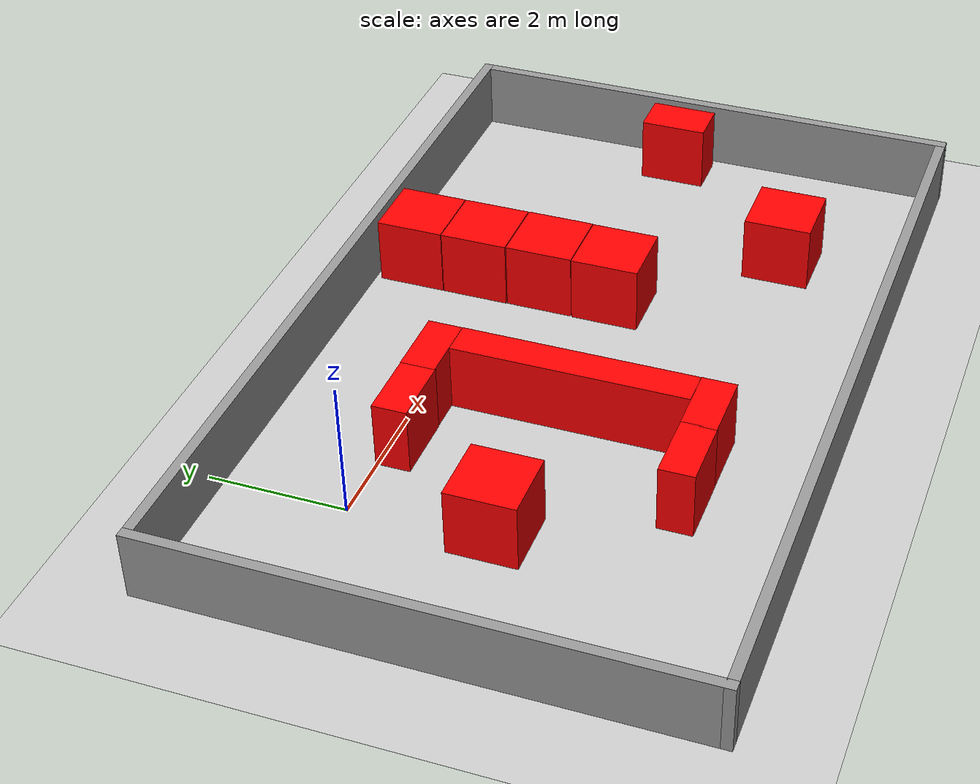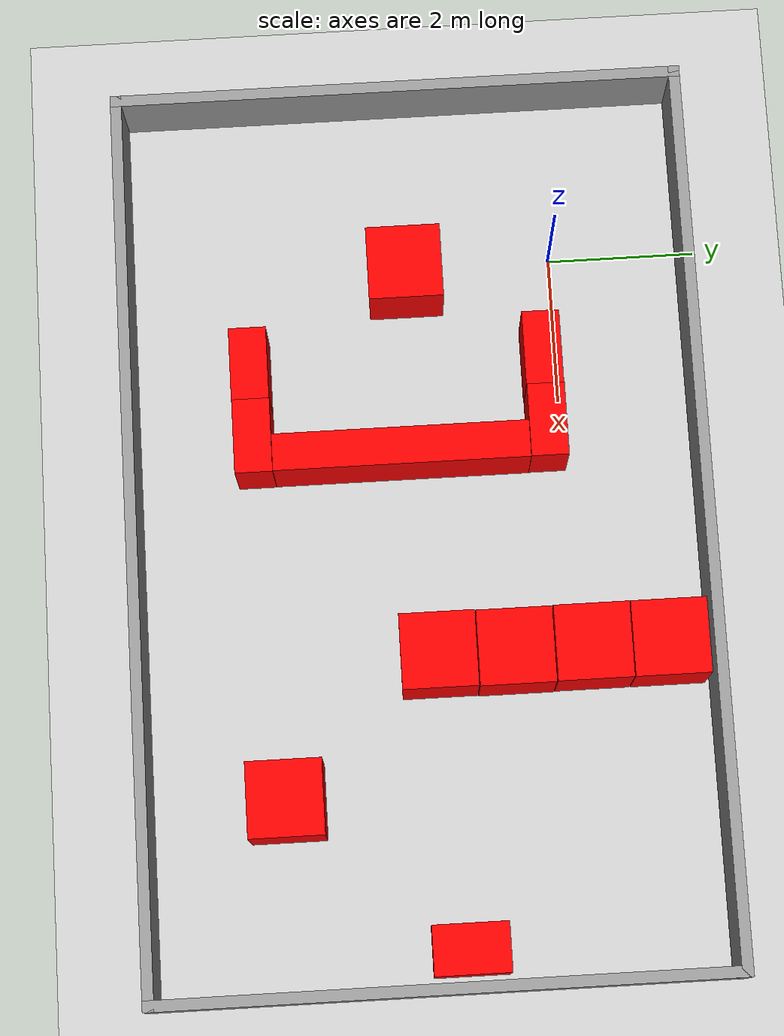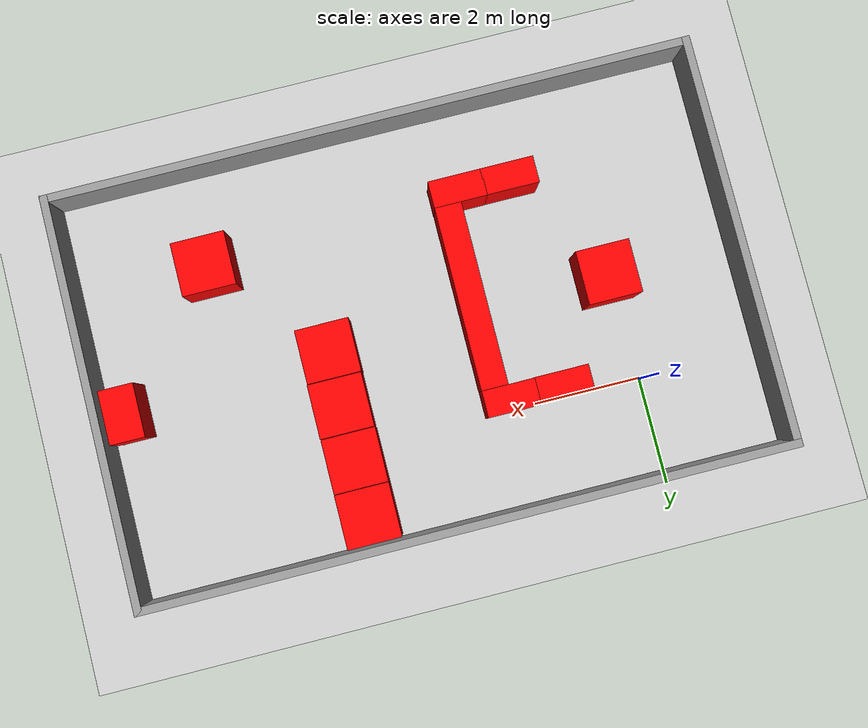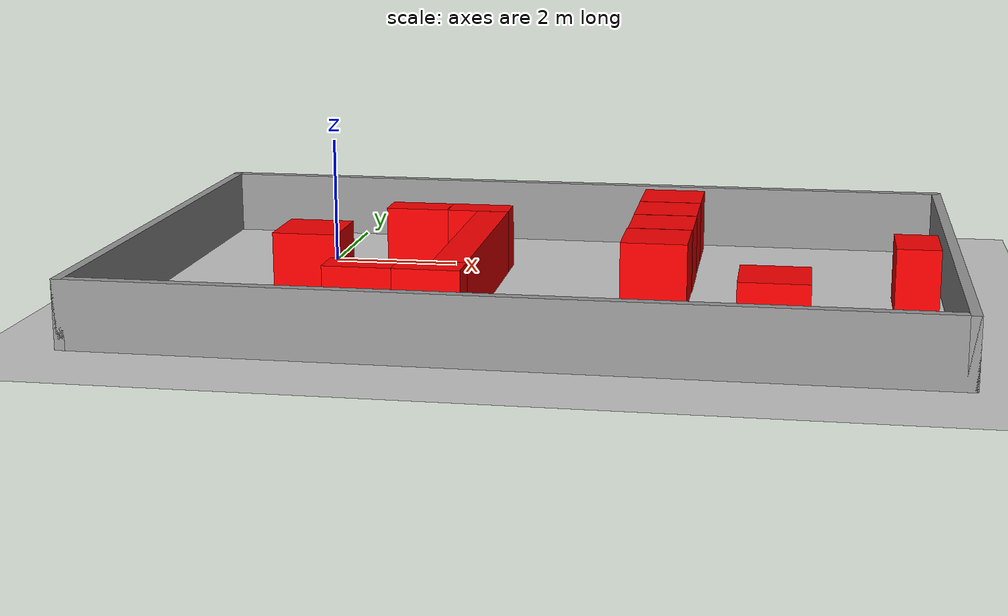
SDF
<sdf version="1.6">
 <world name="default">
  <light name="sun" type="directional">
   <pose>0 0 10 0 -0 0</pose>
   <diffuse>0.8 0.8 0.8 1</diffuse>
   <specular>0.2 0.2 0.2 1</specular>
   <attenuation>
    <range>1000</range>
    <constant>0.9</constant>
    <linear>0.01</linear>
    <quadratic>0.001</quadratic>
   </attenuation>
   <direction>-0.5 0.1 -0.9</direction>
  </light>
  <model name="ground_plane">
   <static>1</static>
   <link name="link">
    <collision name="collision">
     <geometry><plane><normal>0 0 1</normal><size>100 100</size></plane></geometry>
     <surface>
      <contact><collide_bitmask>65535</collide_bitmask></contact>
      <friction><ode><mu>100</mu><mu2>50</mu2></ode></friction>
     </surface>
    </collision>
    <visual name="visual">
     <cast_shadows>0</cast_shadows>
     <geometry><plane><normal>0 0 1</normal><size>100 100</size></plane></geometry>
     <material>
      <script><uri>file://media/materials/scripts/gazebo.material</uri><name>Gazebo/Grey</name></script>
     </material>
    </visual>
   </link>
  </model>
  <gravity>0 0 -9.8</gravity>
  <magnetic_field>6e-06 2.3e-05 -4.2e-05</magnetic_field>
  <atmosphere type="adiabatic"/>
  <physics name="default_physics" default="0" type="ode">
   <max_step_size>0.001</max_step_size>
   <real_time_factor>1</real_time_factor>
   <real_time_update_rate>1000</real_time_update_rate>
  </physics>
  <scene><ambient>0.4 0.4 0.4 1</ambient><background>0.7 0.7 0.7 1</background><shadows>1</shadows></scene>
  <spherical_coordinates>
   <surface_model>EARTH_WGS84</surface_model>
   <latitude_deg>0</latitude_deg>
   <longitude_deg>0</longitude_deg>
   <elevation>0</elevation>
   <heading_deg>0</heading_deg>
  </spherical_coordinates>
  <model name="paredes2xd">
   <link name="Wall_10">
    <pose>0 -3.8 0 0 -0 0</pose>
    <inertial>
     <inertia><ixx>0</ixx><ixy>0</ixy><ixz>0</ixz><iyy>0</iyy><iyz>0</iyz><izz>0</izz></inertia>
     <mass>0</mass>
    </inertial>
    <visual name="Wall_10_Visual">
     <pose>0 0 1.25 0 -0 0</pose>
     <geometry><box><size>12.25 0.15 0.999998</size></box></geometry>
     <material>
      <script><uri>file://media/materials/scripts/gazebo.material</uri><name>Gazebo/Grey</name></script>
      <ambient>1 1 1 1</ambient>
      <shader type="pixel"><normal_map>__default__</normal_map></shader>
      <diffuse>0.7 0.7 0.7 1</diffuse>
      <specular>0.01 0.01 0.01 1</specular>
      <emissive>0 0 0 1</emissive>
     </material>
     <meta><layer>0</layer></meta>
    </visual>
    <collision name="Wall_10_Collision">
     <pose>0 0 1.25 0 -0 0</pose>
     <geometry><box><size>12.25 0.15 2.5</size></box></geometry>
     <surface>
      <friction>
       <ode><mu>1</mu><mu2>1</mu2><fdir1>0 0 0</fdir1><slip1>0</slip1><slip2>0</slip2></ode>
       <torsional>
        <coefficient>1</coefficient>
        <patch_radius>0</patch_radius>
        <surface_radius>0</surface_radius>
        <use_patch_radius>1</use_patch_radius>
        <ode><slip>0</slip></ode>
       </torsional>
      </friction>
      <bounce><restitution_coefficient>0</restitution_coefficient><threshold>1e+06</threshold></bounce>
      <contact>
       <collide_without_contact>0</collide_without_contact>
       <collide_without_contact_bitmask>1</collide_without_contact_bitmask>
       <collide_bitmask>1</collide_bitmask>
       <ode>
        <soft_cfm>0</soft_cfm>
        <soft_erp>0.2</soft_erp>
        <kp>1e+13</kp>
        <kd>1</kd>
        <max_vel>0.01</max_vel>
        <min_depth>0</min_depth>
       </ode>
       <bullet>
        <split_impulse>1</split_impulse>
        <split_impulse_penetration_threshold>-0.01</split_impulse_penetration_threshold>
        <soft_cfm>0</soft_cfm>
        <soft_erp>0.2</soft_erp>
        <kp>1e+13</kp>
        <kd>1</kd>
       </bullet>
      </contact>
     </surface>
    </collision>
   </link>
   <link name="Wall_11">
    <pose>6.05 0 0 0 -0 1.5708</pose>
    <inertial>
     <mass>1</mass>
     <inertia><ixx>1</ixx><ixy>0</ixy><ixz>0</ixz><iyy>1</iyy><iyz>0</iyz><izz>1</izz></inertia>
    </inertial>
    <visual name="Wall_11_Visual">
     <pose>0 0 1.25 0 -0 0</pose>
     <geometry><box><size>7.75 0.15 1</size></box></geometry>
     <material>
      <script><uri>file://media/materials/scripts/gazebo.material</uri><name>Gazebo/Grey</name></script>
      <ambient>1 1 1 1</ambient>
      <shader type="pixel"><normal_map>__default__</normal_map></shader>
      <diffuse>0.7 0.7 0.7 1</diffuse>
      <specular>0.01 0.01 0.01 1</specular>
      <emissive>0 0 0 1</emissive>
     </material>
     <meta><layer>0</layer></meta>
    </visual>
    <collision name="Wall_11_Collision">
     <pose>0 0 1.25 0 -0 0</pose>
     <geometry><box><size>7.75 0.15 2.5</size></box></geometry>
     <surface>
      <friction>
       <ode><mu>1</mu><mu2>1</mu2><fdir1>0 0 0</fdir1><slip1>0</slip1><slip2>0</slip2></ode>
       <torsional>
        <coefficient>1</coefficient>
        <patch_radius>0</patch_radius>
        <surface_radius>0</surface_radius>
        <use_patch_radius>1</use_patch_radius>
        <ode><slip>0</slip></ode>
       </torsional>
      </friction>
      <bounce><restitution_coefficient>0</restitution_coefficient><threshold>1e+06</threshold></bounce>
      <contact>
       <collide_without_contact>0</collide_without_contact>
       <collide_without_contact_bitmask>1</collide_without_contact_bitmask>
       <collide_bitmask>1</collide_bitmask>
       <ode>
        <soft_cfm>0</soft_cfm>
        <soft_erp>0.2</soft_erp>
        <kp>1e+13</kp>
        <kd>1</kd>
        <max_vel>0.01</max_vel>
        <min_depth>0</min_depth>
       </ode>
       <bullet>
        <split_impulse>1</split_impulse>
        <split_impulse_penetration_threshold>-0.01</split_impulse_penetration_threshold>
        <soft_cfm>0</soft_cfm>
        <soft_erp>0.2</soft_erp>
        <kp>1e+13</kp>
        <kd>1</kd>
       </bullet>
      </contact>
     </surface>
    </collision>
   </link>
   <link name="Wall_5">
    <pose>-6.05 0 0 0 -0 1.5708</pose>
    <inertial>
     <inertia><ixx>0</ixx><ixy>0</ixy><ixz>0</ixz><iyy>0</iyy><iyz>0</iyz><izz>0</izz></inertia>
     <mass>0</mass>
    </inertial>
    <visual name="Wall_5_Visual">
     <pose>0 0 1.25 0 -0 0</pose>
     <geometry><box><size>7.75 0.15 1</size></box></geometry>
     <material>
      <script><uri>file://media/materials/scripts/gazebo.material</uri><name>Gazebo/Grey</name></script>
      <ambient>1 1 1 1</ambient>
      <shader type="pixel"><normal_map>__default__</normal_map></shader>
      <diffuse>0.7 0.7 0.7 1</diffuse>
      <specular>0.01 0.01 0.01 1</specular>
      <emissive>0 0 0 1</emissive>
     </material>
     <meta><layer>0</layer></meta>
    </visual>
    <collision name="Wall_5_Collision">
     <pose>0 0 1.25 0 -0 0</pose>
     <geometry><box><size>7.75 0.15 2.49999</size></box></geometry>
     <surface>
      <friction>
       <ode><mu>1</mu><mu2>1</mu2><fdir1>0 0 0</fdir1><slip1>0</slip1><slip2>0</slip2></ode>
       <torsional>
        <coefficient>1</coefficient>
        <patch_radius>0</patch_radius>
        <surface_radius>0</surface_radius>
        <use_patch_radius>1</use_patch_radius>
        <ode><slip>0</slip></ode>
       </torsional>
      </friction>
      <bounce><restitution_coefficient>0</restitution_coefficient><threshold>1e+06</threshold></bounce>
      <contact>
       <collide_without_contact>0</collide_without_contact>
       <collide_without_contact_bitmask>1</collide_without_contact_bitmask>
       <collide_bitmask>1</collide_bitmask>
       <ode>
        <soft_cfm>0</soft_cfm>
        <soft_erp>0.2</soft_erp>
        <kp>1e+13</kp>
        <kd>1</kd>
        <max_vel>0.01</max_vel>
        <min_depth>0</min_depth>
       </ode>
       <bullet>
        <split_impulse>1</split_impulse>
        <split_impulse_penetration_threshold>-0.01</split_impulse_penetration_threshold>
        <soft_cfm>0</soft_cfm>
        <soft_erp>0.2</soft_erp>
        <kp>1e+13</kp>
        <kd>1</kd>
       </bullet>
      </contact>
     </surface>
    </collision>
   </link>
   <link name="Wall_7">
    <pose>0 3.8 0 0 -0 0</pose>
    <inertial>
     <inertia><ixx>0</ixx><ixy>0</ixy><ixz>0</ixz><iyy>0</iyy><iyz>0</iyz><izz>0</izz></inertia>
     <mass>0</mass>
    </inertial>
    <visual name="Wall_7_Visual">
     <pose>0 0 1.25 0 -0 0</pose>
     <geometry><box><size>12.25 0.15 1</size></box></geometry>
     <material>
      <script><uri>file://media/materials/scripts/gazebo.material</uri><name>Gazebo/Grey</name></script>
      <ambient>1 1 1 1</ambient>
      <shader type="pixel"><normal_map>__default__</normal_map></shader>
      <diffuse>0.7 0.7 0.7 1</diffuse>
      <specular>0.01 0.01 0.01 1</specular>
      <emissive>0 0 0 1</emissive>
     </material>
     <meta><layer>0</layer></meta>
    </visual>
    <collision name="Wall_7_Collision">
     <pose>0 0 1.25 0 -0 0</pose>
     <geometry><box><size>12.25 0.15 2.5</size></box></geometry>
     <surface>
      <friction>
       <ode><mu>1</mu><mu2>1</mu2><fdir1>0 0 0</fdir1><slip1>0</slip1><slip2>0</slip2></ode>
       <torsional>
        <coefficient>1</coefficient>
        <patch_radius>0</patch_radius>
        <surface_radius>0</surface_radius>
        <use_patch_radius>1</use_patch_radius>
        <ode><slip>0</slip></ode>
       </torsional>
      </friction>
      <bounce><restitution_coefficient>0</restitution_coefficient><threshold>1e+06</threshold></bounce>
      <contact>
       <collide_without_contact>0</collide_without_contact>
       <collide_without_contact_bitmask>1</collide_without_contact_bitmask>
       <collide_bitmask>1</collide_bitmask>
       <ode>
        <soft_cfm>0</soft_cfm>
        <soft_erp>0.2</soft_erp>
        <kp>1e+13</kp>
        <kd>1</kd>
        <max_vel>0.01</max_vel>
        <min_depth>0</min_depth>
       </ode>
       <bullet>
        <split_impulse>1</split_impulse>
        <split_impulse_penetration_threshold>-0.01</split_impulse_penetration_threshold>
        <soft_cfm>0</soft_cfm>
        <soft_erp>0.2</soft_erp>
        <kp>1e+13</kp>
        <kd>1</kd>
       </bullet>
      </contact>
     </surface>
    </collision>
   </link>
   <static>1</static>
   <pose>3.771 -1.98229 -0.701326 0 -0 0</pose>
  </model>
  <model name="cajas_rojas">
   <link name="link">
    <inertial>
     <mass>1</mass>
     <inertia>
      <ixx>0.166667</ixx>
      <ixy>0</ixy>
      <ixz>0</ixz>
      <iyy>0.166667</iyy>
      <iyz>0</iyz>
      <izz>0.166667</izz>
     </inertia>
    </inertial>
    <visual name="visual">
     <geometry><box><size>0.999999 1 1</size></box></geometry>
     <material>
      <script><name>Gazebo/Grey</name><uri>file://media/materials/scripts/gazebo.material</uri></script>
      <shader type="pixel"><normal_map>__default__</normal_map></shader>
      <ambient>0.3 0 0 0</ambient>
      <diffuse>1 0 0 0.9</diffuse>
      <specular>0 0.01 0.01 1</specular>
      <emissive>0 0 0 1</emissive>
     </material>
    </visual>
    <collision name="collision">
     <geometry><box><size>0.999999 1 1</size></box></geometry>
     <surface>
      <friction>
       <ode><mu>1</mu><mu2>1</mu2><fdir1>0 0 0</fdir1><slip1>0</slip1><slip2>0</slip2></ode>
       <torsional>
        <coefficient>1</coefficient>
        <patch_radius>0</patch_radius>
        <surface_radius>0</surface_radius>
        <use_patch_radius>1</use_patch_radius>
        <ode><slip>0</slip></ode>
       </torsional>
      </friction>
      <bounce><restitution_coefficient>0</restitution_coefficient><threshold>1e+06</threshold></bounce>
      <contact>
       <collide_without_contact>0</collide_without_contact>
       <collide_without_contact_bitmask>1</collide_without_contact_bitmask>
       <collide_bitmask>1</collide_bitmask>
       <ode>
        <soft_cfm>0</soft_cfm>
        <soft_erp>0.2</soft_erp>
        <kp>1e+13</kp>
        <kd>1</kd>
        <max_vel>0.01</max_vel>
        <min_depth>0</min_depth>
       </ode>
       <bullet>
        <split_impulse>1</split_impulse>
        <split_impulse_penetration_threshold>-0.01</split_impulse_penetration_threshold>
        <soft_cfm>0</soft_cfm>
        <soft_erp>0.2</soft_erp>
        <kp>1e+13</kp>
        <kd>1</kd>
       </bullet>
      </contact>
     </surface>
    </collision>
   </link>
   <link name="link_clone">
    <inertial>
     <mass>3.42173</mass>
     <inertia><ixx>3.62369</ixx><ixy>0</ixy><ixz>0</ixz><iyy>0.570288</iyy><iyz>0</iyz><izz>3.62369</izz></inertia>
    </inertial>
    <pose>2.5301 -0.185392 0 0 -0 0</pose>
    <visual name="visual">
     <geometry><box><size>0.5 3.42173 1</size></box></geometry>
     <material>
      <script><name>Gazebo/Grey</name><uri>file://media/materials/scripts/gazebo.material</uri></script>
      <shader type="pixel"><normal_map>__default__</normal_map></shader>
      <ambient>0.3 0 0 0</ambient>
      <diffuse>1 0 0 0.9</diffuse>
      <specular>0 0.01 0.01 1</specular>
      <emissive>0 0 0 1</emissive>
     </material>
    </visual>
    <collision name="collision">
     <geometry><box><size>0.999999 3.42173 1</size></box></geometry>
     <surface>
      <friction>
       <ode><mu>1</mu><mu2>1</mu2><fdir1>0 0 0</fdir1><slip1>0</slip1><slip2>0</slip2></ode>
       <torsional>
        <coefficient>1</coefficient>
        <patch_radius>0</patch_radius>
        <surface_radius>0</surface_radius>
        <use_patch_radius>1</use_patch_radius>
        <ode><slip>0</slip></ode>
       </torsional>
      </friction>
      <bounce><restitution_coefficient>0</restitution_coefficient><threshold>1e+06</threshold></bounce>
      <contact>
       <collide_without_contact>0</collide_without_contact>
       <collide_without_contact_bitmask>1</collide_without_contact_bitmask>
       <collide_bitmask>1</collide_bitmask>
       <ode>
        <soft_cfm>0</soft_cfm>
        <soft_erp>0.2</soft_erp>
        <kp>1e+13</kp>
        <kd>1</kd>
        <max_vel>0.01</max_vel>
        <min_depth>0</min_depth>
       </ode>
       <bullet>
        <split_impulse>1</split_impulse>
        <split_impulse_penetration_threshold>-0.01</split_impulse_penetration_threshold>
        <soft_cfm>0</soft_cfm>
        <soft_erp>0.2</soft_erp>
        <kp>1e+13</kp>
        <kd>1</kd>
       </bullet>
      </contact>
     </surface>
    </collision>
   </link>
   <link name="link_clone_0">
    <inertial>
     <mass>1</mass>
     <inertia>
      <ixx>0.166667</ixx>
      <ixy>0</ixy>
      <ixz>0</ixz>
      <iyy>0.166667</iyy>
      <iyz>0</iyz>
      <izz>0.166667</izz>
     </inertia>
    </inertial>
    <pose>5.28805 3.18471 0 0 -0 0</pose>
    <visual name="visual">
     <geometry><box><size>0.999999 1 1</size></box></geometry>
     <material>
      <script><name>Gazebo/Grey</name><uri>file://media/materials/scripts/gazebo.material</uri></script>
      <shader type="pixel"><normal_map>__default__</normal_map></shader>
      <ambient>0.3 0 0 0</ambient>
      <diffuse>1 0 0 0.9</diffuse>
      <specular>0 0.01 0.01 1</specular>
      <emissive>0 0 0 1</emissive>
     </material>
    </visual>
    <collision name="collision">
     <geometry><box><size>0.999999 1 1</size></box></geometry>
     <surface>
      <friction>
       <ode><mu>1</mu><mu2>1</mu2><fdir1>0 0 0</fdir1><slip1>0</slip1><slip2>0</slip2></ode>
       <torsional>
        <coefficient>1</coefficient>
        <patch_radius>0</patch_radius>
        <surface_radius>0</surface_radius>
        <use_patch_radius>1</use_patch_radius>
        <ode><slip>0</slip></ode>
       </torsional>
      </friction>
      <bounce><restitution_coefficient>0</restitution_coefficient><threshold>1e+06</threshold></bounce>
      <contact>
       <collide_without_contact>0</collide_without_contact>
       <collide_without_contact_bitmask>1</collide_without_contact_bitmask>
       <collide_bitmask>1</collide_bitmask>
       <ode>
        <soft_cfm>0</soft_cfm>
        <soft_erp>0.2</soft_erp>
        <kp>1e+13</kp>
        <kd>1</kd>
        <max_vel>0.01</max_vel>
        <min_depth>0</min_depth>
       </ode>
       <bullet>
        <split_impulse>1</split_impulse>
        <split_impulse_penetration_threshold>-0.01</split_impulse_penetration_threshold>
        <soft_cfm>0</soft_cfm>
        <soft_erp>0.2</soft_erp>
        <kp>1e+13</kp>
        <kd>1</kd>
       </bullet>
      </contact>
     </surface>
    </collision>
   </link>
   <link name="link_clone_0_clone">
    <inertial>
     <mass>1</mass>
     <inertia>
      <ixx>0.166667</ixx>
      <ixy>0</ixy>
      <ixz>0</ixz>
      <iyy>0.166667</iyy>
      <iyz>0</iyz>
      <izz>0.166667</izz>
     </inertia>
    </inertial>
    <pose>5.28805 2.17449 0 0 -0 0</pose>
    <visual name="visual">
     <geometry><box><size>0.999999 1 1</size></box></geometry>
     <material>
      <script><name>Gazebo/Grey</name><uri>file://media/materials/scripts/gazebo.material</uri></script>
      <shader type="pixel"><normal_map>__default__</normal_map></shader>
      <ambient>0.3 0 0 0</ambient>
      <diffuse>1 0 0 0.9</diffuse>
      <specular>0 0.01 0.01 1</specular>
      <emissive>0 0 0 1</emissive>
     </material>
    </visual>
    <collision name="collision">
     <geometry><box><size>0.999999 1 1</size></box></geometry>
     <surface>
      <friction>
       <ode><mu>1</mu><mu2>1</mu2><fdir1>0 0 0</fdir1><slip1>0</slip1><slip2>0</slip2></ode>
       <torsional>
        <coefficient>1</coefficient>
        <patch_radius>0</patch_radius>
        <surface_radius>0</surface_radius>
        <use_patch_radius>1</use_patch_radius>
        <ode><slip>0</slip></ode>
       </torsional>
      </friction>
      <bounce><restitution_coefficient>0</restitution_coefficient><threshold>1e+06</threshold></bounce>
      <contact>
       <collide_without_contact>0</collide_without_contact>
       <collide_without_contact_bitmask>1</collide_without_contact_bitmask>
       <collide_bitmask>1</collide_bitmask>
       <ode>
        <soft_cfm>0</soft_cfm>
        <soft_erp>0.2</soft_erp>
        <kp>1e+13</kp>
        <kd>1</kd>
        <max_vel>0.01</max_vel>
        <min_depth>0</min_depth>
       </ode>
       <bullet>
        <split_impulse>1</split_impulse>
        <split_impulse_penetration_threshold>-0.01</split_impulse_penetration_threshold>
        <soft_cfm>0</soft_cfm>
        <soft_erp>0.2</soft_erp>
        <kp>1e+13</kp>
        <kd>1</kd>
       </bullet>
      </contact>
     </surface>
    </collision>
   </link>
   <link name="link_clone_0_clone_0">
    <inertial>
     <mass>1</mass>
     <inertia>
      <ixx>0.166667</ixx>
      <ixy>0</ixy>
      <ixz>0</ixz>
      <iyy>0.166667</iyy>
      <iyz>0</iyz>
      <izz>0.166667</izz>
     </inertia>
    </inertial>
    <pose>5.29441 1.16074 0 0 -0 0</pose>
    <visual name="visual">
     <geometry><box><size>0.999999 1 1</size></box></geometry>
     <material>
      <script><name>Gazebo/Grey</name><uri>file://media/materials/scripts/gazebo.material</uri></script>
      <shader type="pixel"><normal_map>__default__</normal_map></shader>
      <ambient>0.3 0 0 0</ambient>
      <diffuse>1 0 0 0.9</diffuse>
      <specular>0 0.01 0.01 1</specular>
      <emissive>0 0 0 1</emissive>
     </material>
    </visual>
    <collision name="collision">
     <geometry><box><size>0.999999 1 1</size></box></geometry>
     <surface>
      <friction>
       <ode><mu>1</mu><mu2>1</mu2><fdir1>0 0 0</fdir1><slip1>0</slip1><slip2>0</slip2></ode>
       <torsional>
        <coefficient>1</coefficient>
        <patch_radius>0</patch_radius>
        <surface_radius>0</surface_radius>
        <use_patch_radius>1</use_patch_radius>
        <ode><slip>0</slip></ode>
       </torsional>
      </friction>
      <bounce><restitution_coefficient>0</restitution_coefficient><threshold>1e+06</threshold></bounce>
      <contact>
       <collide_without_contact>0</collide_without_contact>
       <collide_without_contact_bitmask>1</collide_without_contact_bitmask>
       <collide_bitmask>1</collide_bitmask>
       <ode>
        <soft_cfm>0</soft_cfm>
        <soft_erp>0.2</soft_erp>
        <kp>1e+13</kp>
        <kd>1</kd>
        <max_vel>0.01</max_vel>
        <min_depth>0</min_depth>
       </ode>
       <bullet>
        <split_impulse>1</split_impulse>
        <split_impulse_penetration_threshold>-0.01</split_impulse_penetration_threshold>
        <soft_cfm>0</soft_cfm>
        <soft_erp>0.2</soft_erp>
        <kp>1e+13</kp>
        <kd>1</kd>
       </bullet>
      </contact>
     </surface>
    </collision>
   </link>
   <link name="link_clone_0_clone_0_clone">
    <inertial>
     <mass>1</mass>
     <inertia>
      <ixx>0.166667</ixx>
      <ixy>0</ixy>
      <ixz>0</ixz>
      <iyy>0.166667</iyy>
      <iyz>0</iyz>
      <izz>0.166667</izz>
     </inertia>
    </inertial>
    <pose>5.28503 0.149078 0 0 -0 0</pose>
    <visual name="visual">
     <geometry><box><size>0.999999 1 1</size></box></geometry>
     <material>
      <script><name>Gazebo/Grey</name><uri>file://media/materials/scripts/gazebo.material</uri></script>
      <shader type="pixel"><normal_map>__default__</normal_map></shader>
      <ambient>0.3 0 0 0</ambient>
      <diffuse>1 0 0 0.9</diffuse>
      <specular>0 0.01 0.01 1</specular>
      <emissive>0 0 0 1</emissive>
     </material>
    </visual>
    <collision name="collision">
     <geometry><box><size>0.999999 1 1</size></box></geometry>
     <surface>
      <friction>
       <ode><mu>1</mu><mu2>1</mu2><fdir1>0 0 0</fdir1><slip1>0</slip1><slip2>0</slip2></ode>
       <torsional>
        <coefficient>1</coefficient>
        <patch_radius>0</patch_radius>
        <surface_radius>0</surface_radius>
        <use_patch_radius>1</use_patch_radius>
        <ode><slip>0</slip></ode>
       </torsional>
      </friction>
      <bounce><restitution_coefficient>0</restitution_coefficient><threshold>1e+06</threshold></bounce>
      <contact>
       <collide_without_contact>0</collide_without_contact>
       <collide_without_contact_bitmask>1</collide_without_contact_bitmask>
       <collide_bitmask>1</collide_bitmask>
       <ode>
        <soft_cfm>0</soft_cfm>
        <soft_erp>0.2</soft_erp>
        <kp>1e+13</kp>
        <kd>1</kd>
        <max_vel>0.01</max_vel>
        <min_depth>0</min_depth>
       </ode>
       <bullet>
        <split_impulse>1</split_impulse>
        <split_impulse_penetration_threshold>-0.01</split_impulse_penetration_threshold>
        <soft_cfm>0</soft_cfm>
        <soft_erp>0.2</soft_erp>
        <kp>1e+13</kp>
        <kd>1</kd>
       </bullet>
      </contact>
     </surface>
    </collision>
   </link>
   <link name="link_clone_0_clone_0_clone_clone">
    <inertial>
     <mass>1</mass>
     <inertia>
      <ixx>0.166667</ixx>
      <ixy>0</ixy>
      <ixz>0</ixz>
      <iyy>0.166667</iyy>
      <iyz>0</iyz>
      <izz>0.166667</izz>
     </inertia>
    </inertial>
    <pose>7.09813 -1.9414 0 0 -0 0</pose>
    <visual name="visual">
     <geometry><box><size>0.999999 1 1</size></box></geometry>
     <material>
      <script><name>Gazebo/Grey</name><uri>file://media/materials/scripts/gazebo.material</uri></script>
      <shader type="pixel"><normal_map>__default__</normal_map></shader>
      <ambient>0.3 0 0 0</ambient>
      <diffuse>1 0 0 0.9</diffuse>
      <specular>0 0.01 0.01 1</specular>
      <emissive>0 0 0 1</emissive>
     </material>
    </visual>
    <collision name="collision">
     <geometry><box><size>0.999999 1 1</size></box></geometry>
     <surface>
      <friction>
       <ode><mu>1</mu><mu2>1</mu2><fdir1>0 0 0</fdir1><slip1>0</slip1><slip2>0</slip2></ode>
       <torsional>
        <coefficient>1</coefficient>
        <patch_radius>0</patch_radius>
        <surface_radius>0</surface_radius>
        <use_patch_radius>1</use_patch_radius>
        <ode><slip>0</slip></ode>
       </torsional>
      </friction>
      <bounce><restitution_coefficient>0</restitution_coefficient><threshold>1e+06</threshold></bounce>
      <contact>
       <collide_without_contact>0</collide_without_contact>
       <collide_without_contact_bitmask>1</collide_without_contact_bitmask>
       <collide_bitmask>1</collide_bitmask>
       <ode>
        <soft_cfm>0</soft_cfm>
        <soft_erp>0.2</soft_erp>
        <kp>1e+13</kp>
        <kd>1</kd>
        <max_vel>0.01</max_vel>
        <min_depth>0</min_depth>
       </ode>
       <bullet>
        <split_impulse>1</split_impulse>
        <split_impulse_penetration_threshold>-0.01</split_impulse_penetration_threshold>
        <soft_cfm>0</soft_cfm>
        <soft_erp>0.2</soft_erp>
        <kp>1e+13</kp>
        <kd>1</kd>
       </bullet>
      </contact>
     </surface>
    </collision>
   </link>
   <link name="link_clone_0_clone_0_clone_clone_clone">
    <inertial>
     <mass>0.651585</mass>
     <inertia>
      <ixx>0.108597</ixx>
      <ixy>0</ixy>
      <ixz>0</ixz>
      <iyy>0.0773521</iyy>
      <iyz>0</iyz>
      <izz>0.0773521</izz>
     </inertia>
    </inertial>
    <pose>9.14393 0.345718 0 0 -0 0</pose>
    <visual name="visual">
     <geometry><box><size>0.651587 1 1</size></box></geometry>
     <material>
      <script><name>Gazebo/Grey</name><uri>file://media/materials/scripts/gazebo.material</uri></script>
      <shader type="pixel"><normal_map>__default__</normal_map></shader>
      <ambient>0.3 0 0 0</ambient>
      <diffuse>1 0 0 0.9</diffuse>
      <specular>0 0.01 0.01 1</specular>
      <emissive>0 0 0 1</emissive>
     </material>
    </visual>
    <collision name="collision">
     <geometry><box><size>0.651587 1 1</size></box></geometry>
     <surface>
      <friction>
       <ode><mu>1</mu><mu2>1</mu2><fdir1>0 0 0</fdir1><slip1>0</slip1><slip2>0</slip2></ode>
       <torsional>
        <coefficient>1</coefficient>
        <patch_radius>0</patch_radius>
        <surface_radius>0</surface_radius>
        <use_patch_radius>1</use_patch_radius>
        <ode><slip>0</slip></ode>
       </torsional>
      </friction>
      <bounce><restitution_coefficient>0</restitution_coefficient><threshold>1e+06</threshold></bounce>
      <contact>
       <collide_without_contact>0</collide_without_contact>
       <collide_without_contact_bitmask>1</collide_without_contact_bitmask>
       <collide_bitmask>1</collide_bitmask>
       <ode>
        <soft_cfm>0</soft_cfm>
        <soft_erp>0.2</soft_erp>
        <kp>1e+13</kp>
        <kd>1</kd>
        <max_vel>0.01</max_vel>
        <min_depth>0</min_depth>
       </ode>
       <bullet>
        <split_impulse>1</split_impulse>
        <split_impulse_penetration_threshold>-0.01</split_impulse_penetration_threshold>
        <soft_cfm>0</soft_cfm>
        <soft_erp>0.2</soft_erp>
        <kp>1e+13</kp>
        <kd>1</kd>
       </bullet>
      </contact>
     </surface>
    </collision>
   </link>
   <link name="link_clone_clone">
    <inertial>
     <mass>1.12506</mass>
     <inertia>
      <ixx>0.212425</ixx>
      <ixy>0</ixy>
      <ixz>0</ixz>
      <iyy>0.187509</iyy>
      <iyz>0</iyz>
      <izz>0.212425</izz>
     </inertia>
    </inertial>
    <pose>2.28417 -2.14932 0 0 -0 0</pose>
    <visual name="visual">
     <geometry><box><size>1 0.5 1</size></box></geometry>
     <material>
      <script><name>Gazebo/Grey</name><uri>file://media/materials/scripts/gazebo.material</uri></script>
      <shader type="pixel"><normal_map>__default__</normal_map></shader>
      <ambient>0.3 0 0 0</ambient>
      <diffuse>1 0 0 0.9</diffuse>
      <specular>0 0.01 0.01 1</specular>
      <emissive>0 0 0 1</emissive>
     </material>
    </visual>
    <collision name="collision">
     <geometry><box><size>0.999999 1.12506 1</size></box></geometry>
     <surface>
      <friction>
       <ode><mu>1</mu><mu2>1</mu2><fdir1>0 0 0</fdir1><slip1>0</slip1><slip2>0</slip2></ode>
       <torsional>
        <coefficient>1</coefficient>
        <patch_radius>0</patch_radius>
        <surface_radius>0</surface_radius>
        <use_patch_radius>1</use_patch_radius>
        <ode><slip>0</slip></ode>
       </torsional>
      </friction>
      <bounce><restitution_coefficient>0</restitution_coefficient><threshold>1e+06</threshold></bounce>
      <contact>
       <collide_without_contact>0</collide_without_contact>
       <collide_without_contact_bitmask>1</collide_without_contact_bitmask>
       <collide_bitmask>1</collide_bitmask>
       <ode>
        <soft_cfm>0</soft_cfm>
        <soft_erp>0.2</soft_erp>
        <kp>1e+13</kp>
        <kd>1</kd>
        <max_vel>0.01</max_vel>
        <min_depth>0</min_depth>
       </ode>
       <bullet>
        <split_impulse>1</split_impulse>
        <split_impulse_penetration_threshold>-0.01</split_impulse_penetration_threshold>
        <soft_cfm>0</soft_cfm>
        <soft_erp>0.2</soft_erp>
        <kp>1e+13</kp>
        <kd>1</kd>
       </bullet>
      </contact>
     </surface>
    </collision>
   </link>
   <link name="link_clone_clone_clone">
    <inertial>
     <mass>1.12506</mass>
     <inertia>
      <ixx>0.212425</ixx>
      <ixy>0</ixy>
      <ixz>0</ixz>
      <iyy>0.187509</iyy>
      <iyz>0</iyz>
      <izz>0.212425</izz>
     </inertia>
    </inertial>
    <pose>1.30339 -2.15141 0 0 -0 0</pose>
    <visual name="visual">
     <geometry><box><size>1 0.5 1</size></box></geometry>
     <material>
      <script><name>Gazebo/Grey</name><uri>file://media/materials/scripts/gazebo.material</uri></script>
      <shader type="pixel"><normal_map>__default__</normal_map></shader>
      <ambient>0.3 0 0 0</ambient>
      <diffuse>1 0 0 0.9</diffuse>
      <specular>0 0.01 0.01 1</specular>
      <emissive>0 0 0 1</emissive>
     </material>
    </visual>
    <collision name="collision">
     <geometry><box><size>0.999999 1.12506 1</size></box></geometry>
     <surface>
      <friction>
       <ode><mu>1</mu><mu2>1</mu2><fdir1>0 0 0</fdir1><slip1>0</slip1><slip2>0</slip2></ode>
       <torsional>
        <coefficient>1</coefficient>
        <patch_radius>0</patch_radius>
        <surface_radius>0</surface_radius>
        <use_patch_radius>1</use_patch_radius>
        <ode><slip>0</slip></ode>
       </torsional>
      </friction>
      <bounce><restitution_coefficient>0</restitution_coefficient><threshold>1e+06</threshold></bounce>
      <contact>
       <collide_without_contact>0</collide_without_contact>
       <collide_without_contact_bitmask>1</collide_without_contact_bitmask>
       <collide_bitmask>1</collide_bitmask>
       <ode>
        <soft_cfm>0</soft_cfm>
        <soft_erp>0.2</soft_erp>
        <kp>1e+13</kp>
        <kd>1</kd>
        <max_vel>0.01</max_vel>
        <min_depth>0</min_depth>
       </ode>
       <bullet>
        <split_impulse>1</split_impulse>
        <split_impulse_penetration_threshold>-0.01</split_impulse_penetration_threshold>
        <soft_cfm>0</soft_cfm>
        <soft_erp>0.2</soft_erp>
        <kp>1e+13</kp>
        <kd>1</kd>
       </bullet>
      </contact>
     </surface>
    </collision>
   </link>
   <link name="link_clone_clone_clone_0">
    <inertial>
     <mass>1.12506</mass>
     <inertia>
      <ixx>0.212425</ixx>
      <ixy>0</ixy>
      <ixz>0</ixz>
      <iyy>0.187509</iyy>
      <iyz>0</iyz>
      <izz>0.212425</izz>
     </inertia>
    </inertial>
    <pose>2.2766 1.77881 0 0 -0 0</pose>
    <visual name="visual">
     <geometry><box><size>1 0.5 1</size></box></geometry>
     <material>
      <script><name>Gazebo/Grey</name><uri>file://media/materials/scripts/gazebo.material</uri></script>
      <shader type="pixel"><normal_map>__default__</normal_map></shader>
      <ambient>0.3 0 0 0</ambient>
      <diffuse>1 0 0 0.9</diffuse>
      <specular>0 0.01 0.01 1</specular>
      <emissive>0 0 0 1</emissive>
     </material>
    </visual>
    <collision name="collision">
     <geometry><box><size>0.999999 1.12506 1</size></box></geometry>
     <surface>
      <friction>
       <ode><mu>1</mu><mu2>1</mu2><fdir1>0 0 0</fdir1><slip1>0</slip1><slip2>0</slip2></ode>
       <torsional>
        <coefficient>1</coefficient>
        <patch_radius>0</patch_radius>
        <surface_radius>0</surface_radius>
        <use_patch_radius>1</use_patch_radius>
        <ode><slip>0</slip></ode>
       </torsional>
      </friction>
      <bounce><restitution_coefficient>0</restitution_coefficient><threshold>1e+06</threshold></bounce>
      <contact>
       <collide_without_contact>0</collide_without_contact>
       <collide_without_contact_bitmask>1</collide_without_contact_bitmask>
       <collide_bitmask>1</collide_bitmask>
       <ode>
        <soft_cfm>0</soft_cfm>
        <soft_erp>0.2</soft_erp>
        <kp>1e+13</kp>
        <kd>1</kd>
        <max_vel>0.01</max_vel>
        <min_depth>0</min_depth>
       </ode>
       <bullet>
        <split_impulse>1</split_impulse>
        <split_impulse_penetration_threshold>-0.01</split_impulse_penetration_threshold>
        <soft_cfm>0</soft_cfm>
        <soft_erp>0.2</soft_erp>
        <kp>1e+13</kp>
        <kd>1</kd>
       </bullet>
      </contact>
     </surface>
    </collision>
   </link>
   <link name="link_clone_clone_clone_0_clone">
    <inertial>
     <mass>1.12506</mass>
     <inertia>
      <ixx>0.212425</ixx>
      <ixy>0</ixy>
      <ixz>0</ixz>
      <iyy>0.187509</iyy>
      <iyz>0</iyz>
      <izz>0.212425</izz>
     </inertia>
    </inertial>
    <pose>1.2928 1.77294 0 0 -0 0</pose>
    <visual name="visual">
     <geometry><box><size>1 0.5 1</size></box></geometry>
     <material>
      <script><name>Gazebo/Grey</name><uri>file://media/materials/scripts/gazebo.material</uri></script>
      <shader type="pixel"><normal_map>__default__</normal_map></shader>
      <ambient>0.3 0 0 0</ambient>
      <diffuse>1 0 0 0.9</diffuse>
      <specular>0 0.01 0.01 1</specular>
      <emissive>0 0 0 1</emissive>
     </material>
    </visual>
    <collision name="collision">
     <geometry><box><size>0.999999 1.12506 1</size></box></geometry>
     <surface>
      <friction>
       <ode><mu>1</mu><mu2>1</mu2><fdir1>0 0 0</fdir1><slip1>0</slip1><slip2>0</slip2></ode>
       <torsional>
        <coefficient>1</coefficient>
        <patch_radius>0</patch_radius>
        <surface_radius>0</surface_radius>
        <use_patch_radius>1</use_patch_radius>
        <ode><slip>0</slip></ode>
       </torsional>
      </friction>
      <bounce><restitution_coefficient>0</restitution_coefficient><threshold>1e+06</threshold></bounce>
      <contact>
       <collide_without_contact>0</collide_without_contact>
       <collide_without_contact_bitmask>1</collide_without_contact_bitmask>
       <collide_bitmask>1</collide_bitmask>
       <ode>
        <soft_cfm>0</soft_cfm>
        <soft_erp>0.2</soft_erp>
        <kp>1e+13</kp>
        <kd>1</kd>
        <max_vel>0.01</max_vel>
        <min_depth>0</min_depth>
       </ode>
       <bullet>
        <split_impulse>1</split_impulse>
        <split_impulse_penetration_threshold>-0.01</split_impulse_penetration_threshold>
        <soft_cfm>0</soft_cfm>
        <soft_erp>0.2</soft_erp>
        <kp>1e+13</kp>
        <kd>1</kd>
       </bullet>
      </contact>
     </surface>
    </collision>
   </link>
   <static>0</static>
   <pose>0.1907 -1.9951 0.499995 -1e-05 0 0</pose>
  </model>
 </world>
</sdf>
